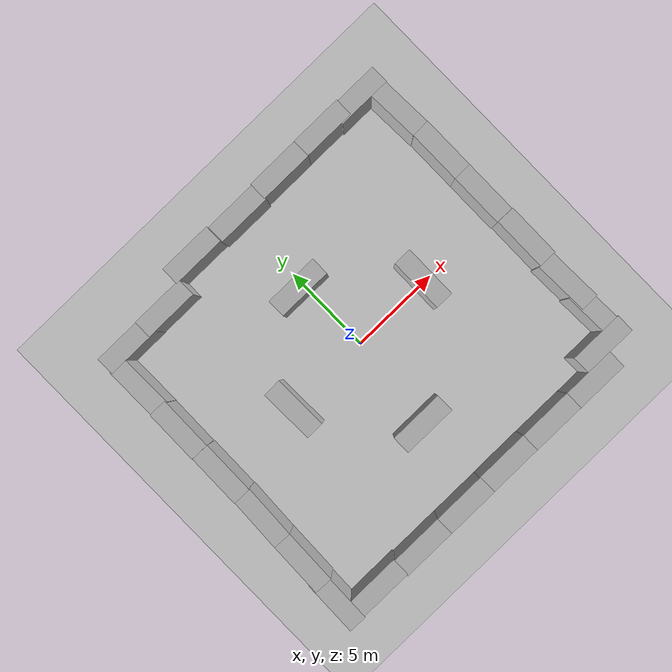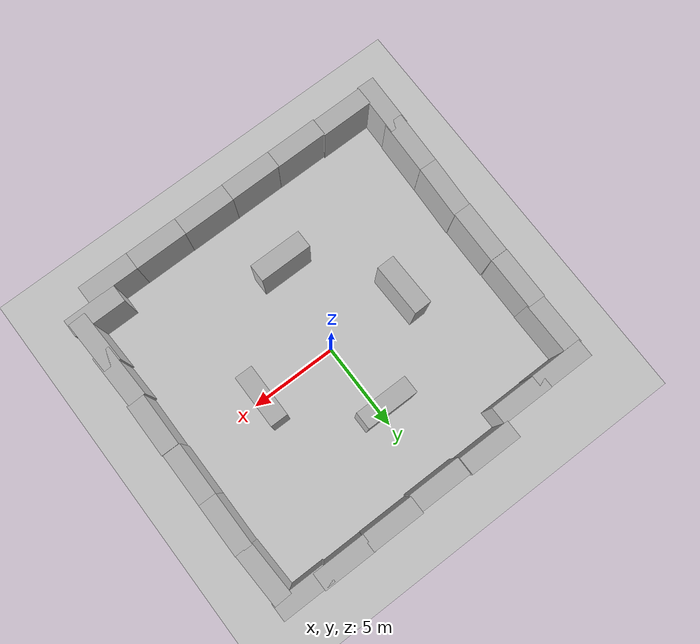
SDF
<sdf version="1.7">
 <world name="default">
  <light name="sun" type="directional">
   <pose>0 0 10 0 -0 0</pose>
   <diffuse>0.8 0.8 0.8 1</diffuse>
   <specular>0.2 0.2 0.2 1</specular>
   <attenuation>
    <range>1000</range>
    <constant>0.9</constant>
    <linear>0.01</linear>
    <quadratic>0.001</quadratic>
   </attenuation>
   <direction>-0.5 0.1 -0.9</direction>
   <spot><inner_angle>0</inner_angle><outer_angle>0</outer_angle><falloff>0</falloff></spot>
  </light>
  <model name="ground_plane">
   <static>1</static>
   <link name="link">
    <collision name="collision">
     <geometry><plane><normal>0 0 1</normal><size>100 100</size></plane></geometry>
     <surface><friction><ode><mu>100</mu><mu2>50</mu2></ode></friction></surface>
    </collision>
    <visual name="visual">
     <cast_shadows>0</cast_shadows>
     <geometry><plane><normal>0 0 1</normal><size>100 100</size></plane></geometry>
     <material>
      <script><uri>file://media/materials/scripts/gazebo.material</uri><name>Gazebo/Grey</name></script>
     </material>
    </visual>
   </link>
  </model>
  <gravity>0 0 -9.8</gravity>
  <magnetic_field>6e-06 2.3e-05 -4.2e-05</magnetic_field>
  <atmosphere type="adiabatic"/>
  <physics type="ode">
   <max_step_size>0.001</max_step_size>
   <real_time_factor>1</real_time_factor>
   <real_time_update_rate>1000</real_time_update_rate>
  </physics>
  <scene><ambient>0.4 0.4 0.4 1</ambient><background>0.7 0.7 0.7 1</background><shadows>1</shadows></scene>
  <audio><device>default</device></audio>
  <spherical_coordinates>
   <surface_model>EARTH_WGS84</surface_model>
   <latitude_deg>0</latitude_deg>
   <longitude_deg>0</longitude_deg>
   <elevation>0</elevation>
   <heading_deg>0</heading_deg>
  </spherical_coordinates>
  <model name="brick_box_3x1x3_1">
   <static>1</static>
   <link name="chassis">
    <pose>0 0 1.5 0 -0 0</pose>
    <collision name="collision"><geometry><box><size>3 1 3</size></box></geometry></collision>
    <visual name="visual">
     <geometry><mesh><uri>model://brick_box_3x1x3/meshes/simple_box.dae</uri><scale>3 1 3</scale></mesh></geometry>
     <material>
      <script>
       <uri>model://brick_box_3x1x3/materials/scripts</uri>
       <uri>model://brick_box_3x1x3/materials/textures</uri>
       <name>BrickBox/Diffuse</name>
      </script>
     </material>
    </visual>
   </link>
   <pose>-2.9174 8.87002 0 0 -0 0</pose>
  </model>
  <model name="brick_box_3x1x3_0">
   <static>1</static>
   <link name="chassis">
    <pose>0 0 1.5 0 -0 0</pose>
    <collision name="collision"><geometry><box><size>3 1 3</size></box></geometry></collision>
    <visual name="visual">
     <geometry><mesh><uri>model://brick_box_3x1x3/meshes/simple_box.dae</uri><scale>3 1 3</scale></mesh></geometry>
     <material>
      <script>
       <uri>model://brick_box_3x1x3/materials/scripts</uri>
       <uri>model://brick_box_3x1x3/materials/textures</uri>
       <name>BrickBox/Diffuse</name>
      </script>
     </material>
    </visual>
   </link>
   <pose>3.07245 8.85773 0 0 -0 0</pose>
  </model>
  <model name="brick_box_3x1x3_2">
   <static>1</static>
   <link name="chassis">
    <pose>0 0 1.5 0 -0 0</pose>
    <collision name="collision"><geometry><box><size>3 1 3</size></box></geometry></collision>
    <visual name="visual">
     <geometry><mesh><uri>model://brick_box_3x1x3/meshes/simple_box.dae</uri><scale>3 1 3</scale></mesh></geometry>
     <material>
      <script>
       <uri>model://brick_box_3x1x3/materials/scripts</uri>
       <uri>model://brick_box_3x1x3/materials/textures</uri>
       <name>BrickBox/Diffuse</name>
      </script>
     </material>
    </visual>
   </link>
   <pose>-5.69905 7.93499 0 0 -0 0</pose>
  </model>
  <model name="brick_box_3x1x3_3">
   <static>1</static>
   <link name="chassis">
    <pose>0 0 1.5 0 -0 0</pose>
    <collision name="collision"><geometry><box><size>3 1 3</size></box></geometry></collision>
    <visual name="visual">
     <geometry><mesh><uri>model://brick_box_3x1x3/meshes/simple_box.dae</uri><scale>3 1 3</scale></mesh></geometry>
     <material>
      <script>
       <uri>model://brick_box_3x1x3/materials/scripts</uri>
       <uri>model://brick_box_3x1x3/materials/textures</uri>
       <name>BrickBox/Diffuse</name>
      </script>
     </material>
    </visual>
   </link>
   <pose>-8.2703 7.91304 0 0 -0 0</pose>
  </model>
  <model name="brick_box_3x1x3">
   <static>1</static>
   <link name="chassis">
    <pose>0 0 1.5 0 -0 0</pose>
    <collision name="collision"><geometry><box><size>3 1 3</size></box></geometry></collision>
    <visual name="visual">
     <geometry><mesh><uri>model://brick_box_3x1x3/meshes/simple_box.dae</uri><scale>3 1 3</scale></mesh></geometry>
     <material>
      <script>
       <uri>model://brick_box_3x1x3/materials/scripts</uri>
       <uri>model://brick_box_3x1x3/materials/textures</uri>
       <name>BrickBox/Diffuse</name>
      </script>
     </material>
    </visual>
   </link>
   <pose>0.118392 8.77935 0 0 -0 0</pose>
  </model>
  <model name="brick_box_3x1x3_4">
   <static>1</static>
   <link name="chassis">
    <pose>0 0 1.5 0 -0 0</pose>
    <collision name="collision"><geometry><box><size>3 1 3</size></box></geometry></collision>
    <visual name="visual">
     <geometry><mesh><uri>model://brick_box_3x1x3/meshes/simple_box.dae</uri><scale>3 1 3</scale></mesh></geometry>
     <material>
      <script>
       <uri>model://brick_box_3x1x3/materials/scripts</uri>
       <uri>model://brick_box_3x1x3/materials/textures</uri>
       <name>BrickBox/Diffuse</name>
      </script>
     </material>
    </visual>
   </link>
   <pose>-9.34551 6.03053 0 0.011054 0.006475 1.57899</pose>
  </model>
  <model name="brick_box_3x1x3_5">
   <static>1</static>
   <link name="chassis">
    <pose>0 0 1.5 0 -0 0</pose>
    <collision name="collision"><geometry><box><size>3 1 3</size></box></geometry></collision>
    <visual name="visual">
     <geometry><mesh><uri>model://brick_box_3x1x3/meshes/simple_box.dae</uri><scale>3 1 3</scale></mesh></geometry>
     <material>
      <script>
       <uri>model://brick_box_3x1x3/materials/scripts</uri>
       <uri>model://brick_box_3x1x3/materials/textures</uri>
       <name>BrickBox/Diffuse</name>
      </script>
     </material>
    </visual>
   </link>
   <pose>-9.36826 3.22173 0 -0.000778 0.01735 -1.58491</pose>
  </model>
  <model name="brick_box_3x1x3_6">
   <static>1</static>
   <link name="chassis">
    <pose>0 0 1.5 0 -0 0</pose>
    <collision name="collision"><geometry><box><size>3 1 3</size></box></geometry></collision>
    <visual name="visual">
     <geometry><mesh><uri>model://brick_box_3x1x3/meshes/simple_box.dae</uri><scale>3 1 3</scale></mesh></geometry>
     <material>
      <script>
       <uri>model://brick_box_3x1x3/materials/scripts</uri>
       <uri>model://brick_box_3x1x3/materials/textures</uri>
       <name>BrickBox/Diffuse</name>
      </script>
     </material>
    </visual>
   </link>
   <pose>-9.38201 0.166775 0 0 0 -1.58372</pose>
  </model>
  <model name="brick_box_3x1x3_7">
   <static>1</static>
   <link name="chassis">
    <pose>0 0 1.5 0 -0 0</pose>
    <collision name="collision"><geometry><box><size>3 1 3</size></box></geometry></collision>
    <visual name="visual">
     <geometry><mesh><uri>model://brick_box_3x1x3/meshes/simple_box.dae</uri><scale>3 1 3</scale></mesh></geometry>
     <material>
      <script>
       <uri>model://brick_box_3x1x3/materials/scripts</uri>
       <uri>model://brick_box_3x1x3/materials/textures</uri>
       <name>BrickBox/Diffuse</name>
      </script>
     </material>
    </visual>
   </link>
   <pose>-9.43654 -2.76933 0 0 0 -1.61497</pose>
  </model>
  <model name="brick_box_3x1x3_8">
   <static>1</static>
   <link name="chassis">
    <pose>0 0 1.5 0 -0 0</pose>
    <collision name="collision"><geometry><box><size>3 1 3</size></box></geometry></collision>
    <visual name="visual">
     <geometry><mesh><uri>model://brick_box_3x1x3/meshes/simple_box.dae</uri><scale>3 1 3</scale></mesh></geometry>
     <material>
      <script>
       <uri>model://brick_box_3x1x3/materials/scripts</uri>
       <uri>model://brick_box_3x1x3/materials/textures</uri>
       <name>BrickBox/Diffuse</name>
      </script>
     </material>
    </visual>
   </link>
   <pose>-9.54182 -5.76198 0 0 0 -1.60031</pose>
  </model>
  <model name="brick_box_3x1x3_9">
   <static>1</static>
   <link name="chassis">
    <pose>0 0 1.5 0 -0 0</pose>
    <collision name="collision"><geometry><box><size>3 1 3</size></box></geometry></collision>
    <visual name="visual">
     <geometry><mesh><uri>model://brick_box_3x1x3/meshes/simple_box.dae</uri><scale>3 1 3</scale></mesh></geometry>
     <material>
      <script>
       <uri>model://brick_box_3x1x3/materials/scripts</uri>
       <uri>model://brick_box_3x1x3/materials/textures</uri>
       <name>BrickBox/Diffuse</name>
      </script>
     </material>
    </visual>
   </link>
   <pose>-9.64758 -8.28554 0 0 0 -1.59546</pose>
  </model>
  <model name="brick_box_3x1x3_10">
   <static>1</static>
   <link name="chassis">
    <pose>0 0 1.5 0 -0 0</pose>
    <collision name="collision"><geometry><box><size>3 1 3</size></box></geometry></collision>
    <visual name="visual">
     <geometry><mesh><uri>model://brick_box_3x1x3/meshes/simple_box.dae</uri><scale>3 1 3</scale></mesh></geometry>
     <material>
      <script>
       <uri>model://brick_box_3x1x3/materials/scripts</uri>
       <uri>model://brick_box_3x1x3/materials/textures</uri>
       <name>BrickBox/Diffuse</name>
      </script>
     </material>
    </visual>
   </link>
   <pose>-7.72049 -9.23458 0 0 -0 0</pose>
  </model>
  <model name="brick_box_3x1x3_11">
   <static>1</static>
   <link name="chassis">
    <pose>0 0 1.5 0 -0 0</pose>
    <collision name="collision"><geometry><box><size>3 1 3</size></box></geometry></collision>
    <visual name="visual">
     <geometry><mesh><uri>model://brick_box_3x1x3/meshes/simple_box.dae</uri><scale>3 1 3</scale></mesh></geometry>
     <material>
      <script>
       <uri>model://brick_box_3x1x3/materials/scripts</uri>
       <uri>model://brick_box_3x1x3/materials/textures</uri>
       <name>BrickBox/Diffuse</name>
      </script>
     </material>
    </visual>
   </link>
   <pose>-4.78918 -9.30369 0 0 -0 0</pose>
  </model>
  <model name="brick_box_3x1x3_12">
   <static>1</static>
   <link name="chassis">
    <pose>0 0 1.5 0 -0 0</pose>
    <collision name="collision"><geometry><box><size>3 1 3</size></box></geometry></collision>
    <visual name="visual">
     <geometry><mesh><uri>model://brick_box_3x1x3/meshes/simple_box.dae</uri><scale>3 1 3</scale></mesh></geometry>
     <material>
      <script>
       <uri>model://brick_box_3x1x3/materials/scripts</uri>
       <uri>model://brick_box_3x1x3/materials/textures</uri>
       <name>BrickBox/Diffuse</name>
      </script>
     </material>
    </visual>
   </link>
   <pose>-1.85437 -9.3102 0 0 -0 0</pose>
  </model>
  <model name="brick_box_3x1x3_13">
   <static>1</static>
   <link name="chassis">
    <pose>0 0 1.5 0 -0 0</pose>
    <collision name="collision"><geometry><box><size>3 1 3</size></box></geometry></collision>
    <visual name="visual">
     <geometry><mesh><uri>model://brick_box_3x1x3/meshes/simple_box.dae</uri><scale>3 1 3</scale></mesh></geometry>
     <material>
      <script>
       <uri>model://brick_box_3x1x3/materials/scripts</uri>
       <uri>model://brick_box_3x1x3/materials/textures</uri>
       <name>BrickBox/Diffuse</name>
      </script>
     </material>
    </visual>
   </link>
   <pose>1.07928 -9.29828 0 0 -0 0</pose>
  </model>
  <model name="brick_box_3x1x3_14">
   <static>1</static>
   <link name="chassis">
    <pose>0 0 1.5 0 -0 0</pose>
    <collision name="collision"><geometry><box><size>3 1 3</size></box></geometry></collision>
    <visual name="visual">
     <geometry><mesh><uri>model://brick_box_3x1x3/meshes/simple_box.dae</uri><scale>3 1 3</scale></mesh></geometry>
     <material>
      <script>
       <uri>model://brick_box_3x1x3/materials/scripts</uri>
       <uri>model://brick_box_3x1x3/materials/textures</uri>
       <name>BrickBox/Diffuse</name>
      </script>
     </material>
    </visual>
   </link>
   <pose>4.05181 -9.30687 0 0 -0 0</pose>
  </model>
  <model name="brick_box_3x1x3_15">
   <static>1</static>
   <link name="chassis">
    <pose>0 0 1.5 0 -0 0</pose>
    <collision name="collision"><geometry><box><size>3 1 3</size></box></geometry></collision>
    <visual name="visual">
     <geometry><mesh><uri>model://brick_box_3x1x3/meshes/simple_box.dae</uri><scale>3 1 3</scale></mesh></geometry>
     <material>
      <script>
       <uri>model://brick_box_3x1x3/materials/scripts</uri>
       <uri>model://brick_box_3x1x3/materials/textures</uri>
       <name>BrickBox/Diffuse</name>
      </script>
     </material>
    </visual>
   </link>
   <pose>6.98006 -9.31602 0 0 -0 0</pose>
  </model>
  <model name="brick_box_3x1x3_16">
   <static>1</static>
   <link name="chassis">
    <pose>0 0 1.5 0 -0 0</pose>
    <collision name="collision"><geometry><box><size>3 1 3</size></box></geometry></collision>
    <visual name="visual">
     <geometry><mesh><uri>model://brick_box_3x1x3/meshes/simple_box.dae</uri><scale>3 1 3</scale></mesh></geometry>
     <material>
      <script>
       <uri>model://brick_box_3x1x3/materials/scripts</uri>
       <uri>model://brick_box_3x1x3/materials/textures</uri>
       <name>BrickBox/Diffuse</name>
      </script>
     </material>
    </visual>
   </link>
   <pose>5.98929 8.87459 0 0 -0 0</pose>
  </model>
  <model name="brick_box_3x1x3_17">
   <static>1</static>
   <link name="chassis">
    <pose>0 0 1.5 0 -0 0</pose>
    <collision name="collision"><geometry><box><size>3 1 3</size></box></geometry></collision>
    <visual name="visual">
     <geometry><mesh><uri>model://brick_box_3x1x3/meshes/simple_box.dae</uri><scale>3 1 3</scale></mesh></geometry>
     <material>
      <script>
       <uri>model://brick_box_3x1x3/materials/scripts</uri>
       <uri>model://brick_box_3x1x3/materials/textures</uri>
       <name>BrickBox/Diffuse</name>
      </script>
     </material>
    </visual>
   </link>
   <pose>8.49948 -8.33077 0 0 -0 0</pose>
  </model>
  <model name="brick_box_3x1x3_18">
   <static>1</static>
   <link name="chassis">
    <pose>0 0 1.5 0 -0 0</pose>
    <collision name="collision"><geometry><box><size>3 1 3</size></box></geometry></collision>
    <visual name="visual">
     <geometry><mesh><uri>model://brick_box_3x1x3/meshes/simple_box.dae</uri><scale>3 1 3</scale></mesh></geometry>
     <material>
      <script>
       <uri>model://brick_box_3x1x3/materials/scripts</uri>
       <uri>model://brick_box_3x1x3/materials/textures</uri>
       <name>BrickBox/Diffuse</name>
      </script>
     </material>
    </visual>
   </link>
   <pose>8.37024 8.80586 0 0 -0 0</pose>
  </model>
  <model name="brick_box_3x1x3_19">
   <static>1</static>
   <link name="chassis">
    <pose>0 0 1.5 0 -0 0</pose>
    <collision name="collision"><geometry><box><size>3 1 3</size></box></geometry></collision>
    <visual name="visual">
     <geometry><mesh><uri>model://brick_box_3x1x3/meshes/simple_box.dae</uri><scale>3 1 3</scale></mesh></geometry>
     <material>
      <script>
       <uri>model://brick_box_3x1x3/materials/scripts</uri>
       <uri>model://brick_box_3x1x3/materials/textures</uri>
       <name>BrickBox/Diffuse</name>
      </script>
     </material>
    </visual>
   </link>
   <pose>9.3828 7.00278 0 0 -0 1.60994</pose>
  </model>
  <model name="brick_box_3x1x3_20">
   <static>1</static>
   <link name="chassis">
    <pose>0 0 1.5 0 -0 0</pose>
    <collision name="collision"><geometry><box><size>3 1 3</size></box></geometry></collision>
    <visual name="visual">
     <geometry><mesh><uri>model://brick_box_3x1x3/meshes/simple_box.dae</uri><scale>3 1 3</scale></mesh></geometry>
     <material>
      <script>
       <uri>model://brick_box_3x1x3/materials/scripts</uri>
       <uri>model://brick_box_3x1x3/materials/textures</uri>
       <name>BrickBox/Diffuse</name>
      </script>
     </material>
    </visual>
   </link>
   <pose>9.45688 4.05326 0 0 0 -1.57417</pose>
  </model>
  <model name="brick_box_3x1x3_21">
   <static>1</static>
   <link name="chassis">
    <pose>0 0 1.5 0 -0 0</pose>
    <collision name="collision"><geometry><box><size>3 1 3</size></box></geometry></collision>
    <visual name="visual">
     <geometry><mesh><uri>model://brick_box_3x1x3/meshes/simple_box.dae</uri><scale>3 1 3</scale></mesh></geometry>
     <material>
      <script>
       <uri>model://brick_box_3x1x3/materials/scripts</uri>
       <uri>model://brick_box_3x1x3/materials/textures</uri>
       <name>BrickBox/Diffuse</name>
      </script>
     </material>
    </visual>
   </link>
   <pose>9.44575 1.07224 0 0 0 -1.57386</pose>
  </model>
  <model name="brick_box_3x1x3_22">
   <static>1</static>
   <link name="chassis">
    <pose>0 0 1.5 0 -0 0</pose>
    <collision name="collision"><geometry><box><size>3 1 3</size></box></geometry></collision>
    <visual name="visual">
     <geometry><mesh><uri>model://brick_box_3x1x3/meshes/simple_box.dae</uri><scale>3 1 3</scale></mesh></geometry>
     <material>
      <script>
       <uri>model://brick_box_3x1x3/materials/scripts</uri>
       <uri>model://brick_box_3x1x3/materials/textures</uri>
       <name>BrickBox/Diffuse</name>
      </script>
     </material>
    </visual>
   </link>
   <pose>9.47493 -1.94367 0 0 0 -1.57773</pose>
  </model>
  <model name="brick_box_3x1x3_23">
   <static>1</static>
   <link name="chassis">
    <pose>0 0 1.5 0 -0 0</pose>
    <collision name="collision"><geometry><box><size>3 1 3</size></box></geometry></collision>
    <visual name="visual">
     <geometry><mesh><uri>model://brick_box_3x1x3/meshes/simple_box.dae</uri><scale>3 1 3</scale></mesh></geometry>
     <material>
      <script>
       <uri>model://brick_box_3x1x3/materials/scripts</uri>
       <uri>model://brick_box_3x1x3/materials/textures</uri>
       <name>BrickBox/Diffuse</name>
      </script>
     </material>
    </visual>
   </link>
   <pose>9.4177 -4.91363 0 0 0 -1.54086</pose>
  </model>
  <model name="brick_box_3x1x3_24">
   <static>1</static>
   <link name="chassis">
    <pose>0 0 1.5 0 -0 0</pose>
    <collision name="collision"><geometry><box><size>3 1 3</size></box></geometry></collision>
    <visual name="visual">
     <geometry><mesh><uri>model://brick_box_3x1x3/meshes/simple_box.dae</uri><scale>3 1 3</scale></mesh></geometry>
     <material>
      <script>
       <uri>model://brick_box_3x1x3/materials/scripts</uri>
       <uri>model://brick_box_3x1x3/materials/textures</uri>
       <name>BrickBox/Diffuse</name>
      </script>
     </material>
    </visual>
   </link>
   <pose>9.40379 -7.03213 0 0 0 -1.53818</pose>
  </model>
  <model name="brick_box_3x1x3_25">
   <static>1</static>
   <link name="chassis">
    <pose>0 0 1.5 0 -0 0</pose>
    <collision name="collision"><geometry><box><size>3 1 3</size></box></geometry></collision>
    <visual name="visual">
     <geometry><mesh><uri>model://brick_box_3x1x3/meshes/simple_box.dae</uri><scale>3 1 3</scale></mesh></geometry>
     <material>
      <script>
       <uri>model://brick_box_3x1x3/materials/scripts</uri>
       <uri>model://brick_box_3x1x3/materials/textures</uri>
       <name>BrickBox/Diffuse</name>
      </script>
     </material>
    </visual>
   </link>
   <pose>-0.559881 -4.97893 0 0 -0 0</pose>
  </model>
  <model name="brick_box_3x1x3_26">
   <static>1</static>
   <link name="chassis">
    <pose>0 0 1.5 0 -0 0</pose>
    <collision name="collision"><geometry><box><size>3 1 3</size></box></geometry></collision>
    <visual name="visual">
     <geometry><mesh><uri>model://brick_box_3x1x3/meshes/simple_box.dae</uri><scale>3 1 3</scale></mesh></geometry>
     <material>
      <script>
       <uri>model://brick_box_3x1x3/materials/scripts</uri>
       <uri>model://brick_box_3x1x3/materials/textures</uri>
       <name>BrickBox/Diffuse</name>
      </script>
     </material>
    </visual>
   </link>
   <pose>-4.6129 -0.026318 0 0 0 -1.55195</pose>
  </model>
  <model name="brick_box_3x1x3_27">
   <static>1</static>
   <link name="chassis">
    <pose>0 0 1.5 0 -0 0</pose>
    <collision name="collision"><geometry><box><size>3 1 3</size></box></geometry></collision>
    <visual name="visual">
     <geometry><mesh><uri>model://brick_box_3x1x3/meshes/simple_box.dae</uri><scale>3 1 3</scale></mesh></geometry>
     <material>
      <script>
       <uri>model://brick_box_3x1x3/materials/scripts</uri>
       <uri>model://brick_box_3x1x3/materials/textures</uri>
       <name>BrickBox/Diffuse</name>
      </script>
     </material>
    </visual>
   </link>
   <pose>4.42442 0.127963 0 0 0 -1.5762</pose>
  </model>
  <model name="brick_box_3x1x3_28">
   <static>1</static>
   <link name="chassis">
    <pose>0 0 1.5 0 -0 0</pose>
    <collision name="collision"><geometry><box><size>3 1 3</size></box></geometry></collision>
    <visual name="visual">
     <geometry><mesh><uri>model://brick_box_3x1x3/meshes/simple_box.dae</uri><scale>3 1 3</scale></mesh></geometry>
     <material>
      <script>
       <uri>model://brick_box_3x1x3/materials/scripts</uri>
       <uri>model://brick_box_3x1x3/materials/textures</uri>
       <name>BrickBox/Diffuse</name>
      </script>
     </material>
    </visual>
   </link>
   <pose>-0.284676 4.10531 0 0 -0 0</pose>
  </model>
 </world>
</sdf>
